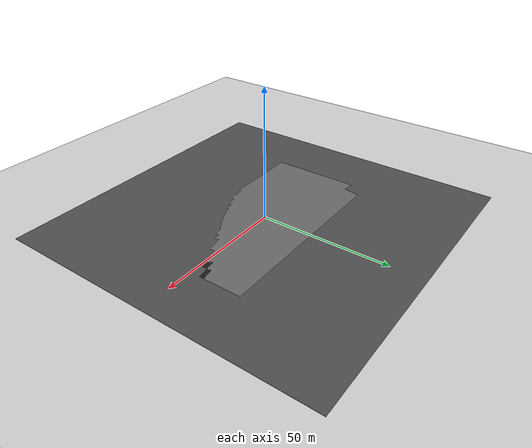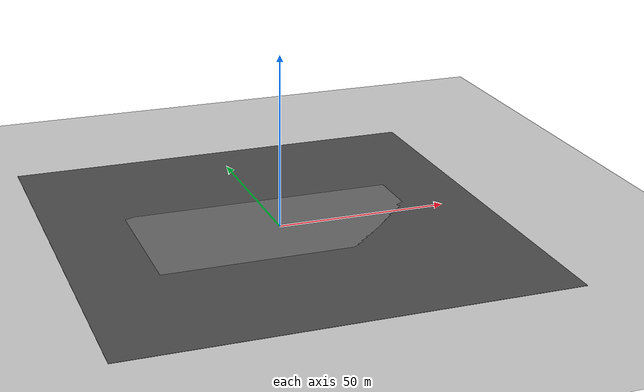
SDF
<?xml version="1.0" ?>
<sdf version="1.9">
  <world name="silverstone_track">

    <!-- Origine géographique du monde : doit être IDENTIQUE au datum
         du navsat_transform_node dans gps_ekf.yaml -->
    <spherical_coordinates>
      <surface_model>EARTH_WGS84</surface_model>
      <world_frame_orientation>ENU</world_frame_orientation>
      <latitude_deg>49.0</latitude_deg>
      <longitude_deg>3.0</longitude_deg>
      <elevation>0</elevation>
      <heading_deg>0</heading_deg>
    </spherical_coordinates>

    <!-- Systèmes obligatoires gz-sim -->
    <plugin filename="gz-sim-physics-system" name="gz::sim::systems::Physics"/>
    <plugin filename="gz-sim-sensors-system" name="gz::sim::systems::Sensors">
      <render_engine>ogre2</render_engine>
    </plugin>
    <plugin filename="gz-sim-scene-broadcaster-system" name="gz::sim::systems::SceneBroadcaster"/>
    <plugin filename="gz-sim-user-commands-system" name="gz::sim::systems::UserCommands"/>
    <!-- NavSat system désactivé - plugin non installé -->

    <include>
      <uri>https://fuel.gazebosim.org/1.0/OpenRobotics/models/Sun</uri>
    </include>

    <include>
      <uri>https://fuel.gazebosim.org/1.0/OpenRobotics/models/Ground%20Plane</uri>
    </include>

    <!-- ==================== PISTE INTERLAGOS (Géométrie originale) ==================== -->
    <!-- Sol asphalté -->
    <model name="asphalt_plane">
      <static>true</static>
      <pose>-0.719505 0.551979 0 0 0 0</pose>
      <link name="link">
        <collision name="collision">
          <geometry>
            <box>
              <size>125 125 0.1</size>
            </box>
          </geometry>
        </collision>
        <visual name="visual">
          <geometry>
            <box>
              <size>125 125 0.1</size>
            </box>
          </geometry>
          <material>
            <ambient>0.3 0.3 0.3 1</ambient>
            <diffuse>0.3 0.3 0.3 1</diffuse>
          </material>
        </visual>
      </link>
    </model>

    <!-- Piste Interlagos simplifiée (sans mesh STL pour éviter les erreurs de chemin) -->
    <model name="interlagos_track">
      <static>true</static>
      <link name="body">
        <collision name="collision">
          <geometry>
            <box>
              <size>80 40 0.1</size>
            </box>
          </geometry>
        </collision>
        <visual name="visual">
          <geometry>
            <box>
              <size>80 40 0.1</size>
            </box>
          </geometry>
          <material>
            <ambient>0.4 0.4 0.4 1</ambient>
            <diffuse>0.4 0.4 0.4 1</diffuse>
          </material>
        </visual>
      </link>
    </model>

  </world>
</sdf>
